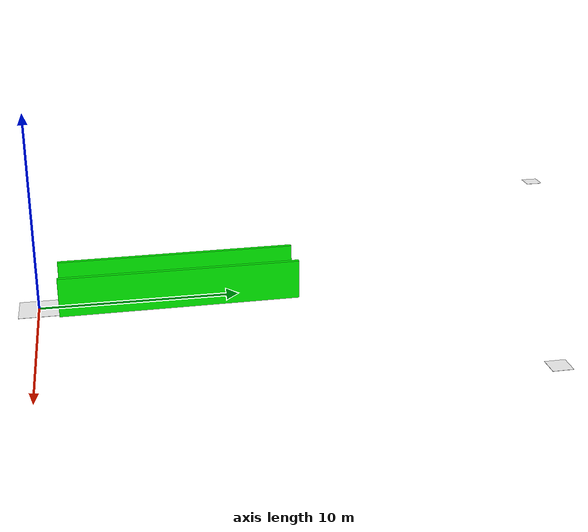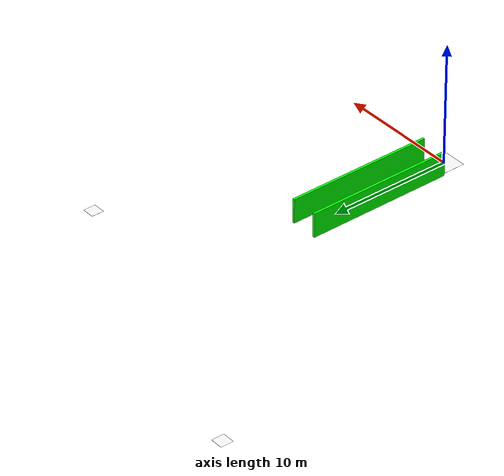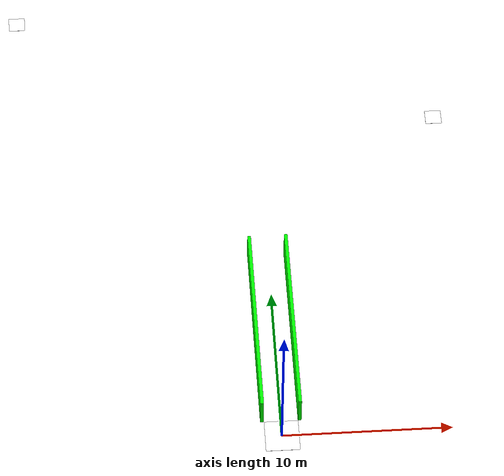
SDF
<sdf version="1.10">
 <world name="iris_runway">
  <physics name="1ms" type="ignore">
   <max_step_size>0.001</max_step_size>
   <real_time_factor>1</real_time_factor>
   <real_time_update_rate>1000</real_time_update_rate>
  </physics>
  <plugin name="gz::sim::systems::Physics" filename="gz-sim-physics-system"/>
  <plugin name="gz::sim::systems::Sensors" filename="gz-sim-sensors-system">
   <render_engine>ogre2</render_engine>
  </plugin>
  <plugin name="gz::sim::systems::UserCommands" filename="gz-sim-user-commands-system"/>
  <plugin name="gz::sim::systems::SceneBroadcaster" filename="gz-sim-scene-broadcaster-system"/>
  <plugin name="gz::sim::systems::Imu" filename="gz-sim-imu-system"/>
  <plugin name="gz::sim::systems::NavSat" filename="gz-sim-navsat-system"/>
  <scene>
   <ambient>1 1 1 1</ambient>
   <background>0.800000012 0.800000012 0.800000012 1</background>
   <shadows>true</shadows>
  </scene>
  <spherical_coordinates>
   <latitude_deg>-35.363261999999999</latitude_deg>
   <longitude_deg>149.16523699999999</longitude_deg>
   <elevation>584</elevation>
   <heading_deg>0</heading_deg>
   <surface_model>EARTH_WGS84</surface_model>
  </spherical_coordinates>
  <gravity>0 0 -9.8000000000000007</gravity>
  <magnetic_field>5.5644999999999998e-06 2.2875799999999999e-05 -4.2388400000000002e-05</magnetic_field>
  <atmosphere type="adiabatic"/>
  <model name="axes">
   <static>true</static>
   <link name="link">
    <visual name="r">
     <cast_shadows>false</cast_shadows>
     <pose>5 0 0.10000000000000001 0 0 0</pose>
     <geometry><box><size>10 0.01 0.01</size></box></geometry>
     <material>
      <ambient>1 0 0 0.800000012</ambient>
      <diffuse>1 0 0 0.800000012</diffuse>
      <emissive>1 0 0 0.800000012</emissive>
      <specular>0.5 0.5 0.5 0.800000012</specular>
     </material>
    </visual>
    <visual name="g">
     <cast_shadows>false</cast_shadows>
     <pose>0 5 0.10000000000000001 0 0 0</pose>
     <geometry><box><size>0.01 10 0.01</size></box></geometry>
     <material>
      <ambient>0 1 0 0.800000012</ambient>
      <diffuse>0 1 0 0.800000012</diffuse>
      <emissive>0 1 0 0.800000012</emissive>
      <specular>0.5 0.5 0.5 0.800000012</specular>
     </material>
    </visual>
    <visual name="b">
     <cast_shadows>false</cast_shadows>
     <pose>0 0 5.0999999999999996 0 0 0</pose>
     <geometry><box><size>0.01 0.01 10</size></box></geometry>
     <material>
      <ambient>0 0 1 0.800000012</ambient>
      <diffuse>0 0 1 0.800000012</diffuse>
      <emissive>0 0 1 0.800000012</emissive>
      <specular>0.5 0.5 0.5 0.800000012</specular>
     </material>
    </visual>
    <sensor name="navsat_sensor" type="navsat"><always_on>true</always_on><update_rate>1</update_rate></sensor>
    <inertial>
     <mass>1</mass>
     <inertia><ixx>1</ixx><ixy>0</ixy><ixz>0</ixz><iyy>1</iyy><iyz>0</iyz><izz>1</izz></inertia>
    </inertial>
   </link>
  </model>
  <include><uri>file:///home/yakhsita-hansdah/qr1</uri><name>qr1</name><pose>0 0 0 1.57 0 0</pose></include>
  <include><uri>file:///home/yakhsita-hansdah/qr2</uri><name>qr2</name><pose>11 23 0 1.57 0 0</pose></include>
  <include><uri>file:///home/yakhsita-hansdah/qr3</uri><name>qr3</name><pose>-15 32 0 1.57 0 0</pose></include>
  <light name="sun" type="directional">
   <pose>0 0 10 0 0 0</pose>
   <intensity>1</intensity>
   <direction>-0.5 0.10000000000000001 -0.90000000000000002</direction>
   <diffuse>0.800000012 0.800000012 0.800000012 1</diffuse>
   <specular>0.800000012 0.800000012 0.800000012 1</specular>
   <attenuation>
    <range>1000</range>
    <linear>0.01</linear>
    <constant>0.90000000000000002</constant>
    <quadratic>0.001</quadratic>
   </attenuation>
   <spot><inner_angle>0</inner_angle><outer_angle>0</outer_angle><falloff>0</falloff></spot>
  </light>
  <model name="green_wall_left">
   <static>true</static>
   <pose>1.07 7 1 0 0 1.5750</pose>
   <link name="link">
    <collision name="collision"><geometry><box><size>12 0.2 2</size></box></geometry></collision>
    <visual name="visual">
     <geometry><box><size>12 0.2 2</size></box></geometry>
     <material><ambient>0 1 0 1</ambient><diffuse>0 1 0 1</diffuse></material>
    </visual>
   </link>
  </model>
  <model name="green_wall_right">
   <static>true</static>
   <pose>-1.14 7 1 0 0 1.5750</pose>
   <link name="link">
    <collision name="collision"><geometry><box><size>12 0.2 2</size></box></geometry></collision>
    <visual name="visual">
     <geometry><box><size>12 0.2 2</size></box></geometry>
     <material><ambient>0 1 0 1</ambient><diffuse>0 1 0 1</diffuse></material>
    </visual>
   </link>
  </model>
 </world>
</sdf>

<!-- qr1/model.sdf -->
<sdf version="1.7">
  <model name="qr1">

    <static>true</static>

    <link name="link">

      <visual name="visual">

        <geometry>
          <box>
            <size>2 0.01 2</size>
          </box>
        </geometry>

        <material>
          <diffuse>1 1 1 1</diffuse>
          <ambient>1 1 1 1</ambient>

          <pbr>
            <metal>
              <albedo_map>
                model://qr1/materials/textures/qr1.png
              </albedo_map>
            </metal>
          </pbr>
        </material>

      </visual>

      <collision name="collision">

        <geometry>
          <box>
            <size>1 0.01 1</size>
          </box>
        </geometry>

      </collision>

    </link>

  </model>
</sdf>

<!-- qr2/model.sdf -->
<sdf version="1.7">
  <model name="qr2">

    <static>true</static>

    <link name="link">

      <visual name="visual">

        <geometry>
          <box>
            <size>1 0.01 1</size>
          </box>
        </geometry>

        <material>
          <diffuse>1 1 1 1</diffuse>
          <ambient>1 1 1 1</ambient>

          <pbr>
            <metal>
              <albedo_map>
                model://qr2/materials/textures/qr2.png
              </albedo_map>
            </metal>
          </pbr>
        </material>

      </visual>

      <collision name="collision">

        <geometry>
          <box>
            <size>1 0.01 1</size>
          </box>
        </geometry>

      </collision>

    </link>

  </model>
</sdf>

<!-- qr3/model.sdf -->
<sdf version="1.7">
  <model name="qr3">

    <static>true</static>

    <link name="link">

      <visual name="visual">

        <geometry>
          <box>
            <size>1 0.01 1</size>
          </box>
        </geometry>

        <material>
          <diffuse>1 1 1 1</diffuse>
          <ambient>1 1 1 1</ambient>

          <pbr>
            <metal>
              <albedo_map>
                model://qr3/materials/textures/qr3.png
              </albedo_map>
            </metal>
          </pbr>
        </material>

      </visual>

      <collision name="collision">

        <geometry>
          <box>
            <size>1 0.01 1</size>
          </box>
        </geometry>

      </collision>

    </link>

  </model>
</sdf>
